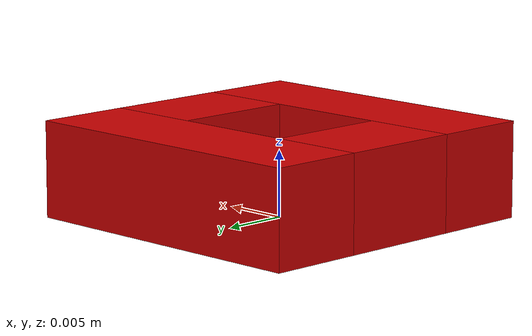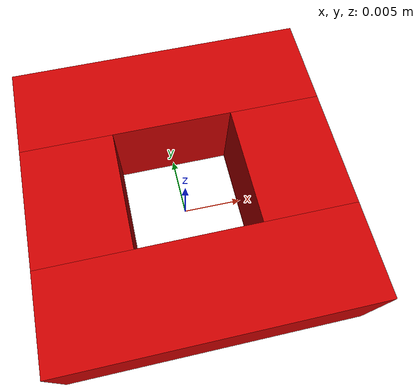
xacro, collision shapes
<?xml version="1.0"?>
<robot name="token_d240" xmlns:xacro="http://www.ros.org/wiki/xacro">

    <xacro:include filename="$(find gazebo_hanoi)/urdf/materials.xacro" />
    <!--Import the hanoi_token macro -->
    <xacro:include filename="$(find gazebo_hanoi)/urdf/hanoi_token.xacro"/>

    <xacro:hanoi_token name="240" diameter="0.0240" hole_diameter="0.0095" height="0.0072" color="Red" mass="0.45">
    </xacro:hanoi_token>

</robot>

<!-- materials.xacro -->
<robot>

    <material name="Black">
        <color rgba="0.0 0.0 0.0 1.0"/>
    </material>

    <material name="Blue">
        <color rgba="0.0 0.0 0.8 1.0"/>
    </material>

    <material name="Green">
        <color rgba="0.0 0.8 0.0 1.0"/>
    </material>

    <material name="Grey">
        <color rgba="0.4 0.4 0.4 1.0"/>
    </material>

    <material name="Orange">
        <color rgba="${255/255} ${108/255} ${10/255} 1.0"/>
    </material>

    <material name="Brown">
        <color rgba="${222/255} ${207/255} ${195/255} 1.0"/>
    </material>

    <material name="Red">
        <color rgba="0.8 0.0 0.0 1.0"/>
    </material>

    <material name="White">
        <color rgba="1.0 1.0 1.0 1.0"/>
    </material>

    <material name="Purple">
        <color rgba="0.5 0 0.5 1"/>
    </material>

</robot>

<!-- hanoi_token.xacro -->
<robot xmlns:xacro="http://www.ros.org/wiki/xacro">

    <xacro:property name="color" value="White" />
    <xacro:property name="diameter" value="0.052" />
    <xacro:property name="hole_diameter" value="0.01" />
    <xacro:property name="height" value="0.072" />
    <xacro:property name="name" value="520" />
    <!-- mass in KG -->
    <xacro:property name="mass" value="0.1" />

    <xacro:macro name="hanoi_token" params="name mass height color diameter hole_diameter">

        <xacro:property name="box_width" value="${(diameter - hole_diameter) / 2}" />
        <xacro:property name="box_center" value="${(box_width + hole_diameter) / 2}" />

        <link name="token_d${name}_link">
            <inertial>
                <origin xyz="0 0 ${height / 2}"/>
                <mass value="${ mass }" />
                <!-- See https://www.amesweb.info/SectionalPropertiesTabs/Mass-Moment-Inertia-Hollow-Cylinder-Shaft.aspx -->
                <inertia  ixx="${(mass / 12) * ( 3 * ( (diameter / 2) * (diameter / 2) + (hole_diameter / 2) * (hole_diameter / 2)) + (height * height))}"
                          ixy="0.0"  ixz="0.0"
                          iyy="${(mass / 12) * ( 3 * ( (diameter / 2) * (diameter / 2) + (hole_diameter / 2) * (hole_diameter / 2)) + (height * height))}"
                          iyz="0.0"
                          izz="${(mass / 2) * ( (diameter / 2) * (diameter / 2) + (hole_diameter / 2) * (hole_diameter / 2) )}" />
            </inertial>
            <visual>
                <origin rpy="0 0 0" xyz="0 0 0"/>
                <geometry>
                    <mesh filename="package://gazebo_hanoi/meshes/towers_of_hanoi/token-${name}.STL" />
                </geometry>
                <material name="${color}"/>
            </visual>
            <collision name="collision_d${name}_b1">
                <origin rpy="0 0 0" xyz="0 ${box_center} ${height / 2}"/>
                <geometry>
                    <box size="${diameter} ${box_width} ${height}"/>
                </geometry>
            </collision>
            <collision name="collision_d${name}_b2">
                <origin rpy="0 0 0" xyz="0 -${box_center} ${height / 2}"/>
                <geometry>
                    <box size="${diameter} ${box_width} ${height}"/>
                </geometry>
            </collision>
            <collision name="collision_d${name}_b3">
                <origin rpy="0 0 0" xyz="-${box_center} 0 ${height / 2}"/>
                <geometry>
                    <box size="${box_width} ${hole_diameter} ${height}"/>
                </geometry>
            </collision>
            <collision name="collision_d${name}_b4">
                <origin rpy="0 0 0" xyz="${box_center} 0 ${height / 2}"/>
                <geometry>
                    <box size="${box_width} ${hole_diameter} ${height}"/>
                </geometry>
            </collision>

        </link>
        <gazebo reference="token_d${name}_link">
            <minDepth>0.001</minDepth>
            <maxVel>0.01</maxVel>
            <kp>1e8</kp>
            <kd>1</kd>
            <dampingFactor>0.8</dampingFactor>
            <material>Gazebo/${color}</material>
        </gazebo>

    </xacro:macro>
</robot>
